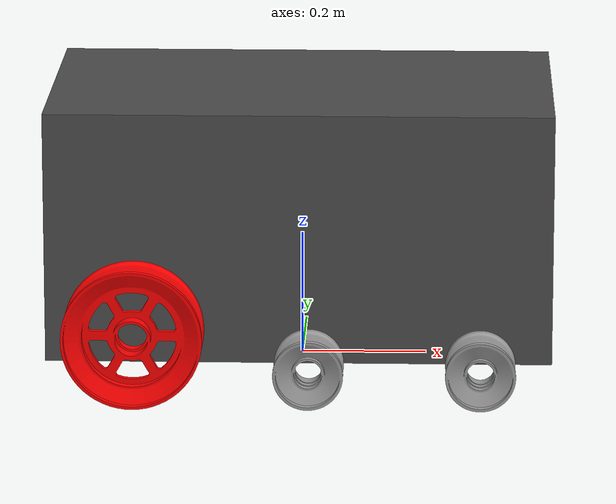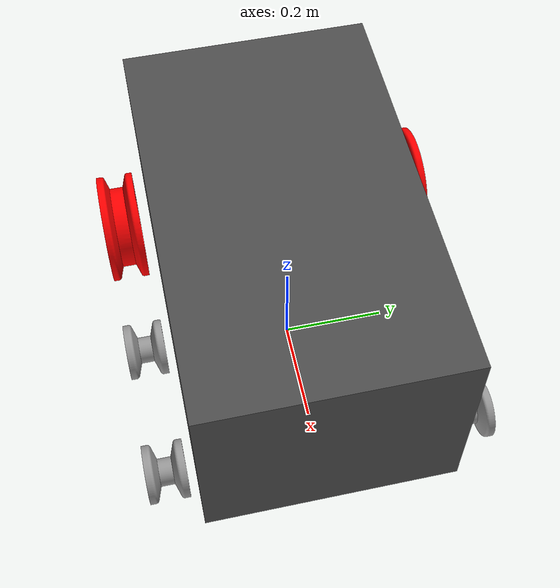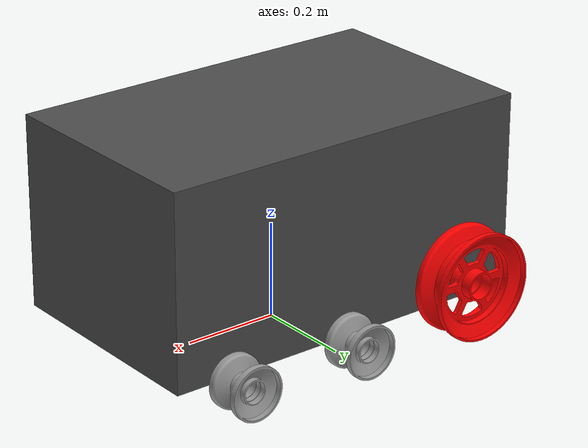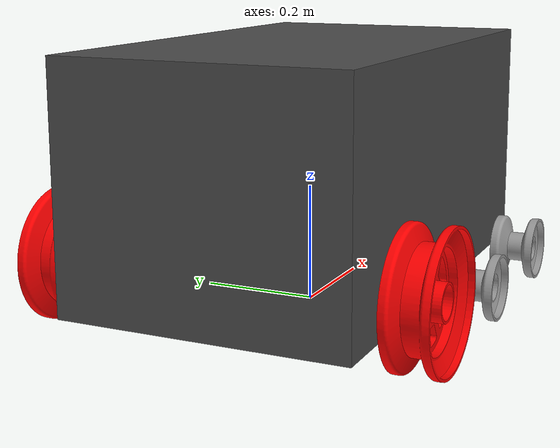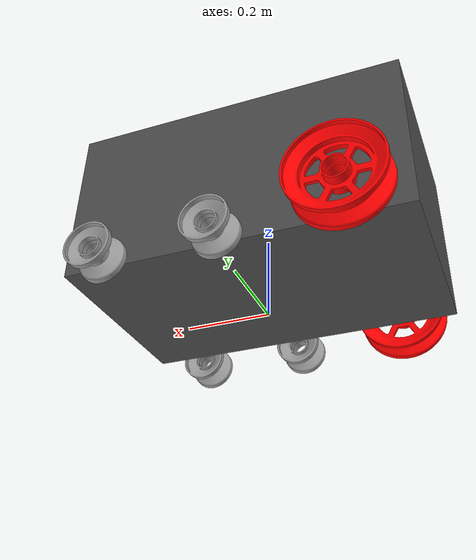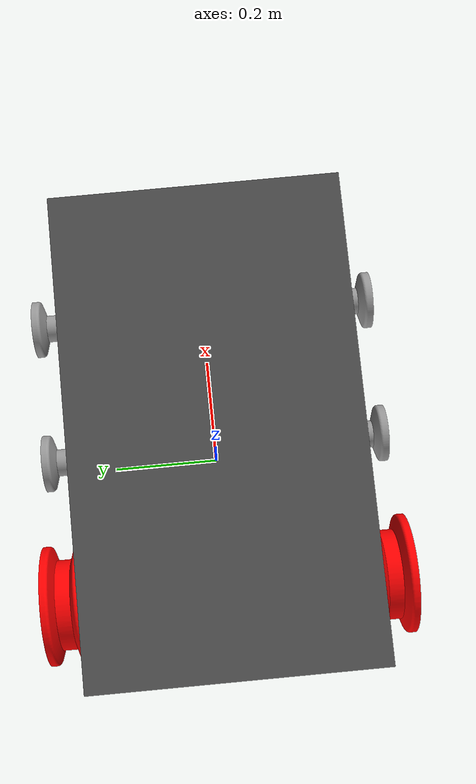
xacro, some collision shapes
<?xml version="1.0"?>
<robot name="msd_tunnel_dtw" xmlns:xacro="http://ros.org/wiki/xacro">
  <material name="gray">
    <color rgba="0.3 0.3 0.3 1.0"/>
  </material>
  <material name="red">
    <color rgba="1.0 0.0 0.0 1.0"/>
  </material>

  <xacro:macro name="drive_wheel" params="parent prefix xyz">
    <joint name="${prefix}_joint" type="continuous">
      <origin xyz="${xyz}" rpy="0 0 0"/>
      <parent link="${parent}"/>
      <child  link="${prefix}_link"/>
      <axis xyz="0 1 0" />
    </joint>

    <transmission name="${prefix}_trans" type="SimpleTransmission">
      <type>transmission_interface/SimpleTransmission</type>
        <actuator name="${prefix}_motor">
          <mechanicalReduction>1</mechanicalReduction>
        </actuator>
      <joint name="${prefix}_joint">
        <hardwareInterface>hardware_interface/VelocityJointInterface</hardwareInterface>
      </joint>
    </transmission>

    <link name="${prefix}_link">
      <inertial>
        <mass value="3.5"/>
        <inertia ixx="0.0001" ixy="0.0" ixz="0.0" iyy="0.0001" iyz="0.0" izz="0.0001"/>
      </inertial>
      <visual>
        <geometry>
          <mesh filename="package://msd_simulator/model/meshes/msd_tunnel/drive_wheel.dae"/>
        </geometry>
        <material name="red"/>
      </visual>
      <collision>
        <origin xyz="0 0 0" rpy="1.57 0 0"/>
        <geometry>
          <cylinder radius="0.1105" length="0.076" />
        </geometry>
      </collision>
    </link>
    <gazebo reference="${prefix}_link">
      <material>Gazebo/Red</material>
      <mu1 value="1.0" />
      <mu2 value="1.0" />
      <kp value="10000000" />
      <kd value="10" />
    </gazebo>
  </xacro:macro>

  <xacro:macro name="roller" params="prefix xyz">
    <joint name="${prefix}_joint" type="fixed">
      <parent link="base_link"/>
      <child  link="${prefix}_link"/>
      <origin xyz="${xyz}" rpy="0 0 0"/>
    </joint>
    <link name="${prefix}_link">
      <inertial>
        <mass value="1.1"/>
        <inertia ixx="0.0001" ixy="0.0" ixz="0.0" iyy="0.0001" iyz="0.0" izz="0.0001"/>
      </inertial>
      <visual>
        <origin xyz="0 0 0" rpy="0 0 0" />
        <geometry>
          <mesh filename="package://msd_simulator/model/meshes/msd_tunnel/roller.dae" />
        </geometry>
      </visual>
      <collision>
        <origin xyz="0 0 0" rpy="1.57 0 0" />
        <geometry>
          <cylinder radius="0.055" length="0.076" />
        </geometry>
      </collision>
    </link>
    <gazebo reference="${prefix}_link">
      <material>Gazebo/Gray</material>
      <mu1 value="0.1" />
      <mu2 value="0.1" />
      <kp value="10000000" />
      <kd value="10" />
    </gazebo>
  </xacro:macro>

  <link name="base_link"/>

  <joint name="body_joint" type="fixed">
    <parent link="base_link"/>
    <child  link="body_link"/>
    <origin xyz="0 0 0" rpy="0 0 0"/>
  </joint>
  <link name="body_link">
    <inertial>
      <origin xyz="0 0 0" rpy="0 0 0"/>
      <mass value="18.28"/>
      <inertia ixx="0.001" ixy="0.0" ixz="0.0" iyy="0.001" iyz="0.0" izz="0.001"/>
    </inertial>
    <visual>
      <origin xyz="0 0 0" rpy="0 0 0" />
      <geometry>
        <mesh filename="package://msd_simulator/model/meshes/msd_tunnel/body.dae" />
      </geometry>
      <material name="gray" />
    </visual>
    <collision>
      <origin xyz="0 0 0.250" rpy="0 0 0" />
      <geometry>
        <box size="0.800 0.480 0.400" />
      </geometry>
    </collision>
  </link>
  <gazebo reference="body_link">
    <material>Gazebo/Gray</material>
  </gazebo>

  <xacro:drive_wheel prefix="left_wheel"  parent="base_link" xyz="-0.2575 0.300 0.1105"/>
  <xacro:drive_wheel prefix="right_wheel" parent="base_link" xyz="-0.2575 -0.300 0.1105"/>

  <xacro:roller prefix="left_front" xyz="0.287 0.295 0.055"/>
  <xacro:roller prefix="left_center" xyz="0.0175 0.295 0.055"/>

  <xacro:roller prefix="right_front" xyz="0.287 -0.295 0.055"/>
  <xacro:roller prefix="right_center" xyz="0.0175 -0.295 0.055"/>

  <gazebo>
    <plugin name="gazebo_ros_control" filename="libgazebo_ros_control.so">
      <robotNamespace>/msd_tunnel_dtw</robotNamespace>
      <robotSimType>gazebo_ros_control/DefaultRobotHWSim</robotSimType>
      <legacyModeNS>true</legacyModeNS>
    </plugin>
  </gazebo>
</robot>
